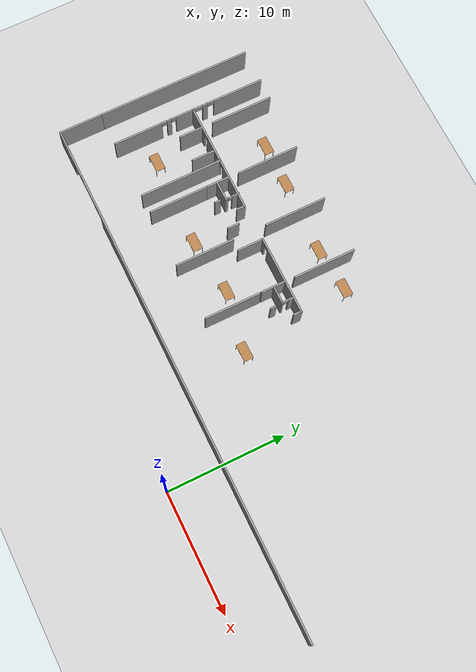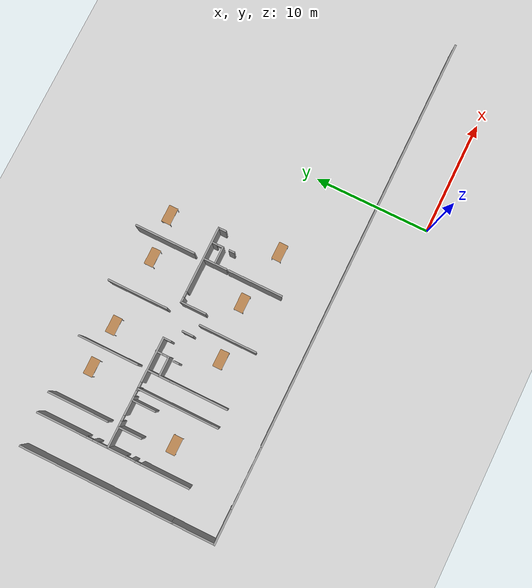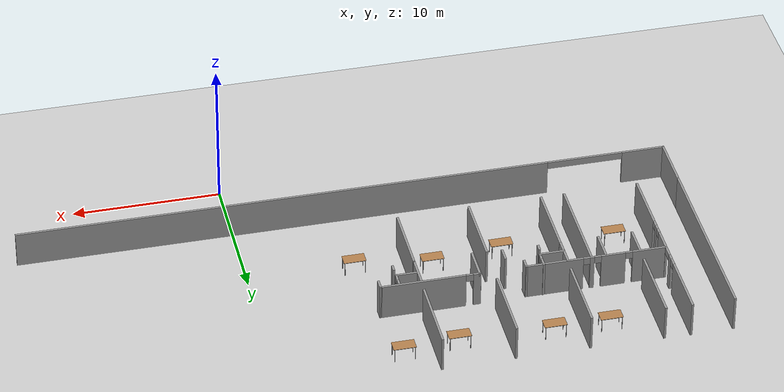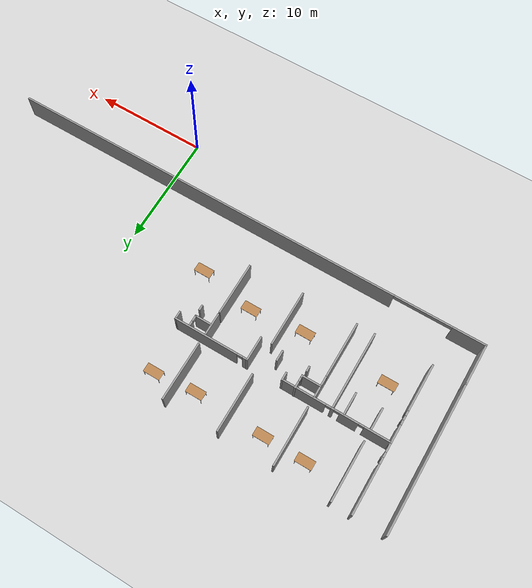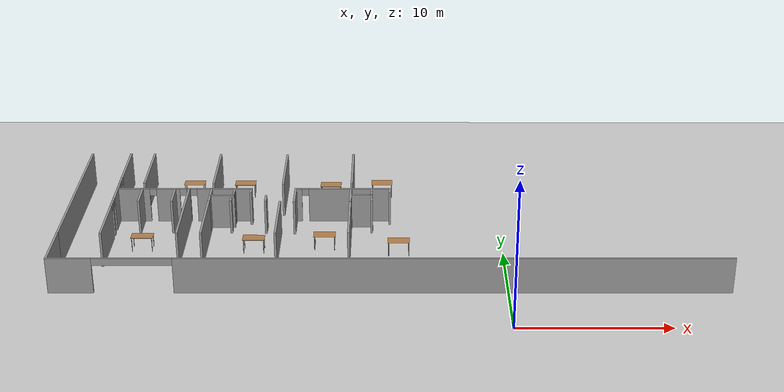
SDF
<sdf version="1.6">
 <world name="default">
  <model name="ground_plane">
   <static>1</static>
   <link name="link">
    <collision name="collision">
     <geometry><plane><normal>0 0 1</normal><size>100 100</size></plane></geometry>
     <surface><friction><ode><mu>100</mu><mu2>50</mu2></ode></friction></surface>
    </collision>
    <visual name="visual">
     <cast_shadows>0</cast_shadows>
     <geometry><plane><normal>0 0 1</normal><size>100 100</size></plane></geometry>
     <material>
      <script><uri>file://media/materials/scripts/gazebo.material</uri><name>Gazebo/Grey</name></script>
     </material>
    </visual>
   </link>
  </model>
  <model name="se1f1_fin.sdf">
   <pose>1.23175 -2.73358 0 0 -0 0</pose>
   <link name="Wall_101">
    <collision name="Wall_101_Collision">
     <geometry><box><size>4.75 0.15 2.5</size></box></geometry>
     <pose>0 0 1.25 0 -0 0</pose>
    </collision>
    <visual name="Wall_101_Visual">
     <pose>0 0 1.25 0 -0 0</pose>
     <geometry><box><size>4.75 0.15 2.5</size></box></geometry>
     <material>
      <script><uri>file://media/materials/scripts/gazebo.material</uri><name>Gazebo/Grey</name></script>
      <ambient>1 1 1 1</ambient>
     </material>
     <meta><layer>0</layer></meta>
    </visual>
    <pose>-11.6538 13.3735 0 0 -0 1.5708</pose>
   </link>
   <link name="Wall_114">
    <collision name="Wall_114_Collision">
     <geometry><box><size>5.25 0.15 2.5</size></box></geometry>
     <pose>0 0 1.25 0 -0 0</pose>
    </collision>
    <visual name="Wall_114_Visual">
     <pose>0 0 1.25 0 -0 0</pose>
     <geometry><box><size>5.25 0.15 2.5</size></box></geometry>
     <material>
      <script><uri>file://media/materials/scripts/gazebo.material</uri><name>Gazebo/Grey</name></script>
      <ambient>1 1 1 1</ambient>
     </material>
     <meta><layer>0</layer></meta>
    </visual>
    <pose>-26.3188 21.4343 0 0 -0 1.5708</pose>
   </link>
   <link name="Wall_116">
    <collision name="Wall_116_Collision">
     <geometry><box><size>5.25 0.15 2.5</size></box></geometry>
     <pose>0 0 1.25 0 -0 0</pose>
    </collision>
    <visual name="Wall_116_Visual">
     <pose>0 0 1.25 0 -0 0</pose>
     <geometry><box><size>5.25 0.15 2.5</size></box></geometry>
     <material>
      <script><uri>file://media/materials/scripts/gazebo.material</uri><name>Gazebo/Grey</name></script>
      <ambient>1 1 1 1</ambient>
     </material>
     <meta><layer>0</layer></meta>
    </visual>
    <pose>-21.4111 21.3539 0 0 -0 1.5708</pose>
   </link>
   <link name="Wall_118">
    <collision name="Wall_118_Collision">
     <geometry><box><size>5.25 0.15 2.5</size></box></geometry>
     <pose>0 0 1.25 0 -0 0</pose>
    </collision>
    <visual name="Wall_118_Visual">
     <pose>0 0 1.25 0 -0 0</pose>
     <geometry><box><size>5.25 0.15 2.5</size></box></geometry>
     <material>
      <script><uri>file://media/materials/scripts/gazebo.material</uri><name>Gazebo/Grey</name></script>
      <ambient>1 1 1 1</ambient>
     </material>
     <meta><layer>0</layer></meta>
    </visual>
    <pose>-16.4833 21.3136 0 0 -0 1.5708</pose>
   </link>
   <link name="Wall_120">
    <collision name="Wall_120_Collision">
     <geometry><box><size>5.25 0.15 2.5</size></box></geometry>
     <pose>0 0 1.25 0 -0 0</pose>
    </collision>
    <visual name="Wall_120_Visual">
     <pose>0 0 1.25 0 -0 0</pose>
     <geometry><box><size>5.25 0.15 2.5</size></box></geometry>
     <material>
      <script><uri>file://media/materials/scripts/gazebo.material</uri><name>Gazebo/Grey</name></script>
      <ambient>1 1 1 1</ambient>
     </material>
     <meta><layer>0</layer></meta>
    </visual>
    <pose>-11.6158 21.3539 0 0 -0 1.5708</pose>
   </link>
   <link name="Wall_14">
    <pose>-28.0766 17.4825 0 0 0 -1.5708</pose>
    <visual name="Wall_14_Visual_0">
     <pose>-4.45706 0 1.25 0 -0 0</pose>
     <geometry><box><size>4.33589 0.15 2.5</size></box></geometry>
     <material>
      <script><uri>file://media/materials/scripts/gazebo.material</uri><name>Gazebo/Grey</name></script>
      <ambient>1 1 1 1</ambient>
     </material>
     <meta><layer>0</layer></meta>
    </visual>
    <collision name="Wall_14_Collision_0">
     <geometry><box><size>4.33589 0.15 2.5</size></box></geometry>
     <pose>-4.45706 0 1.25 0 -0 0</pose>
    </collision>
    <visual name="Wall_14_Visual_1">
     <pose>-1.50054 0 1.25 0 -0 0</pose>
     <geometry><box><size>0.450123 0.15 2.5</size></box></geometry>
     <material>
      <script><uri>file://media/materials/scripts/gazebo.material</uri><name>Gazebo/Grey</name></script>
      <ambient>1 1 1 1</ambient>
     </material>
     <meta><layer>0</layer></meta>
    </visual>
    <collision name="Wall_14_Collision_1">
     <geometry><box><size>0.450123 0.15 2.5</size></box></geometry>
     <pose>-1.50054 0 1.25 0 -0 0</pose>
    </collision>
    <visual name="Wall_14_Visual_2">
     <pose>0.315177 0 1.25 0 -0 0</pose>
     <geometry><box><size>1.64581 0.15 2.5</size></box></geometry>
     <material>
      <script><uri>file://media/materials/scripts/gazebo.material</uri><name>Gazebo/Grey</name></script>
      <ambient>1 1 1 1</ambient>
     </material>
     <meta><layer>0</layer></meta>
    </visual>
    <collision name="Wall_14_Collision_2">
     <geometry><box><size>1.64581 0.15 2.5</size></box></geometry>
     <pose>0.315177 0 1.25 0 -0 0</pose>
    </collision>
    <visual name="Wall_14_Visual_3">
     <pose>1.7534 0 1.25 0 -0 0</pose>
     <geometry><box><size>0.382825 0.15 2.5</size></box></geometry>
     <material>
      <script><uri>file://media/materials/scripts/gazebo.material</uri><name>Gazebo/Grey</name></script>
      <ambient>1 1 1 1</ambient>
     </material>
     <meta><layer>0</layer></meta>
    </visual>
    <collision name="Wall_14_Collision_3">
     <geometry><box><size>0.382825 0.15 2.5</size></box></geometry>
     <pose>1.7534 0 1.25 0 -0 0</pose>
    </collision>
    <visual name="Wall_14_Visual_4">
     <pose>4.51008 0 1.25 0 -0 0</pose>
     <geometry><box><size>4.22984 0.15 2.5</size></box></geometry>
     <material>
      <script><uri>file://media/materials/scripts/gazebo.material</uri><name>Gazebo/Grey</name></script>
      <ambient>1 1 1 1</ambient>
     </material>
     <meta><layer>0</layer></meta>
    </visual>
    <collision name="Wall_14_Collision_4">
     <geometry><box><size>4.22984 0.15 2.5</size></box></geometry>
     <pose>4.51008 0 1.25 0 -0 0</pose>
    </collision>
    <visual name="Wall_14_Visual_5">
     <pose>-2.00736 0 2.25 0 -0 0</pose>
     <geometry><box><size>0.563507 0.15 0.5</size></box></geometry>
     <material>
      <script><uri>file://media/materials/scripts/gazebo.material</uri><name>Gazebo/Grey</name></script>
      <ambient>1 1 1 1</ambient>
     </material>
     <meta><layer>0</layer></meta>
    </visual>
    <collision name="Wall_14_Collision_5">
     <geometry><box><size>0.563507 0.15 0.5</size></box></geometry>
     <pose>-2.00736 0 2.25 0 -0 0</pose>
    </collision>
    <visual name="Wall_14_Visual_6">
     <pose>-0.891604 0 2.25 0 -0 0</pose>
     <geometry><box><size>0.76775 0.15 0.5</size></box></geometry>
     <material>
      <script><uri>file://media/materials/scripts/gazebo.material</uri><name>Gazebo/Grey</name></script>
      <ambient>1 1 1 1</ambient>
     </material>
     <meta><layer>0</layer></meta>
    </visual>
    <collision name="Wall_14_Collision_6">
     <geometry><box><size>0.76775 0.15 0.5</size></box></geometry>
     <pose>-0.891604 0 2.25 0 -0 0</pose>
    </collision>
    <visual name="Wall_14_Visual_7">
     <pose>1.35003 0 2.25 0 -0 0</pose>
     <geometry><box><size>0.4239 0.15 0.5</size></box></geometry>
     <material>
      <script><uri>file://media/materials/scripts/gazebo.material</uri><name>Gazebo/Grey</name></script>
      <ambient>1 1 1 1</ambient>
     </material>
     <meta><layer>0</layer></meta>
    </visual>
    <collision name="Wall_14_Collision_7">
     <geometry><box><size>0.4239 0.15 0.5</size></box></geometry>
     <pose>1.35003 0 2.25 0 -0 0</pose>
    </collision>
    <visual name="Wall_14_Visual_8">
     <pose>2.16998 0 2.25 0 -0 0</pose>
     <geometry><box><size>0.45035 0.15 0.5</size></box></geometry>
     <material>
      <script><uri>file://media/materials/scripts/gazebo.material</uri><name>Gazebo/Grey</name></script>
      <ambient>1 1 1 1</ambient>
     </material>
     <meta><layer>0</layer></meta>
    </visual>
    <collision name="Wall_14_Collision_8">
     <geometry><box><size>0.45035 0.15 0.5</size></box></geometry>
     <pose>2.16998 0 2.25 0 -0 0</pose>
    </collision>
   </link>
   <link name="Wall_18">
    <pose>-23.335 17.9007 0 0 -0 0</pose>
    <visual name="Wall_18_Visual_0">
     <pose>-3.61191 0 1.25 0 -0 0</pose>
     <geometry><box><size>2.27619 0.15 2.5</size></box></geometry>
     <material>
      <script><uri>file://media/materials/scripts/gazebo.material</uri><name>Gazebo/Grey</name></script>
      <ambient>1 1 1 1</ambient>
     </material>
     <meta><layer>0</layer></meta>
    </visual>
    <collision name="Wall_18_Collision_0">
     <geometry><box><size>2.27619 0.15 2.5</size></box></geometry>
     <pose>-3.61191 0 1.25 0 -0 0</pose>
    </collision>
    <visual name="Wall_18_Visual_1">
     <pose>-1.17693 0 1.25 0 -0 0</pose>
     <geometry><box><size>1.64064 0.15 2.5</size></box></geometry>
     <material>
      <script><uri>file://media/materials/scripts/gazebo.material</uri><name>Gazebo/Grey</name></script>
      <ambient>1 1 1 1</ambient>
     </material>
     <meta><layer>0</layer></meta>
    </visual>
    <collision name="Wall_18_Collision_1">
     <geometry><box><size>1.64064 0.15 2.5</size></box></geometry>
     <pose>-1.17693 0 1.25 0 -0 0</pose>
    </collision>
    <visual name="Wall_18_Visual_2">
     <pose>0.25407 0 1.25 0 -0 0</pose>
     <geometry><box><size>0.283366 0.15 2.5</size></box></geometry>
     <material>
      <script><uri>file://media/materials/scripts/gazebo.material</uri><name>Gazebo/Grey</name></script>
      <ambient>1 1 1 1</ambient>
     </material>
     <meta><layer>0</layer></meta>
    </visual>
    <collision name="Wall_18_Collision_2">
     <geometry><box><size>0.283366 0.15 2.5</size></box></geometry>
     <pose>0.25407 0 1.25 0 -0 0</pose>
    </collision>
    <visual name="Wall_18_Visual_3">
     <pose>2.79981 0 1.25 0 -0 0</pose>
     <geometry><box><size>3.90037 0.15 2.5</size></box></geometry>
     <material>
      <script><uri>file://media/materials/scripts/gazebo.material</uri><name>Gazebo/Grey</name></script>
      <ambient>1 1 1 1</ambient>
     </material>
     <meta><layer>0</layer></meta>
    </visual>
    <collision name="Wall_18_Collision_3">
     <geometry><box><size>3.90037 0.15 2.5</size></box></geometry>
     <pose>2.79981 0 1.25 0 -0 0</pose>
    </collision>
    <visual name="Wall_18_Visual_4">
     <pose>-2.23553 0 2.25 0 -0 0</pose>
     <geometry><box><size>0.47656 0.15 0.5</size></box></geometry>
     <material>
      <script><uri>file://media/materials/scripts/gazebo.material</uri><name>Gazebo/Grey</name></script>
      <ambient>1 1 1 1</ambient>
     </material>
     <meta><layer>0</layer></meta>
    </visual>
    <collision name="Wall_18_Collision_4">
     <geometry><box><size>0.47656 0.15 0.5</size></box></geometry>
     <pose>-2.23553 0 2.25 0 -0 0</pose>
    </collision>
    <visual name="Wall_18_Visual_5">
     <pose>-0.122112 0 2.25 0 -0 0</pose>
     <geometry><box><size>0.468998 0.15 0.5</size></box></geometry>
     <material>
      <script><uri>file://media/materials/scripts/gazebo.material</uri><name>Gazebo/Grey</name></script>
      <ambient>1 1 1 1</ambient>
     </material>
     <meta><layer>0</layer></meta>
    </visual>
    <collision name="Wall_18_Collision_5">
     <geometry><box><size>0.468998 0.15 0.5</size></box></geometry>
     <pose>-0.122112 0 2.25 0 -0 0</pose>
    </collision>
    <visual name="Wall_18_Visual_6">
     <pose>0.62269 0 2.25 0 -0 0</pose>
     <geometry><box><size>0.453875 0.15 0.5</size></box></geometry>
     <material>
      <script><uri>file://media/materials/scripts/gazebo.material</uri><name>Gazebo/Grey</name></script>
      <ambient>1 1 1 1</ambient>
     </material>
     <meta><layer>0</layer></meta>
    </visual>
    <collision name="Wall_18_Collision_6">
     <geometry><box><size>0.453875 0.15 0.5</size></box></geometry>
     <pose>0.62269 0 2.25 0 -0 0</pose>
    </collision>
   </link>
   <link name="Wall_19">
    <collision name="Wall_19_Collision">
     <geometry><box><size>0.75 0.15 2.5</size></box></geometry>
     <pose>0 0 1.25 0 -0 0</pose>
    </collision>
    <visual name="Wall_19_Visual">
     <pose>0 0 1.25 0 -0 0</pose>
     <geometry><box><size>0.75 0.15 2.5</size></box></geometry>
     <material>
      <script><uri>file://media/materials/scripts/gazebo.material</uri><name>Gazebo/Grey</name></script>
      <ambient>1 1 1 1</ambient>
     </material>
     <meta><layer>0</layer></meta>
    </visual>
    <pose>-18.66 17.6007 0 0 0 -1.5708</pose>
   </link>
   <link name="Wall_2">
    <collision name="Wall_2_Collision">
     <geometry><box><size>13.25 0.15 2.5</size></box></geometry>
     <pose>0 0 1.25 0 -0 0</pose>
    </collision>
    <visual name="Wall_2_Visual">
     <pose>0 0 1.25 0 -0 0</pose>
     <geometry><box><size>13.25 0.15 2.5</size></box></geometry>
     <material>
      <script><uri>file://media/materials/scripts/gazebo.material</uri><name>Gazebo/Grey</name></script>
      <ambient>1 1 1 1</ambient>
     </material>
     <meta><layer>0</layer></meta>
    </visual>
    <pose>-30.925 17.4675 0 0 0 -1.5708</pose>
   </link>
   <link name="Wall_23">
    <collision name="Wall_23_Collision">
     <geometry><box><size>2.25 0.15 2.5</size></box></geometry>
     <pose>0 0 1.25 0 -0 0</pose>
    </collision>
    <visual name="Wall_23_Visual">
     <pose>0 0 1.25 0 -0 0</pose>
     <geometry><box><size>2.25 0.15 2.5</size></box></geometry>
     <material>
      <script><uri>file://media/materials/scripts/gazebo.material</uri><name>Gazebo/Grey</name></script>
      <ambient>1 1 1 1</ambient>
     </material>
     <meta><layer>0</layer></meta>
    </visual>
    <pose>-15.5339 16.883 0 0 -0 1.5708</pose>
   </link>
   <link name="Wall_24">
    <pose>-12.2339 17.933 0 0 -0 0</pose>
    <visual name="Wall_24_Visual_0">
     <pose>-3.12149 0 1.25 0 -0 0</pose>
     <geometry><box><size>0.507011 0.15 2.5</size></box></geometry>
     <material>
      <script><uri>file://media/materials/scripts/gazebo.material</uri><name>Gazebo/Grey</name></script>
      <ambient>1 1 1 1</ambient>
     </material>
     <meta><layer>0</layer></meta>
    </visual>
    <collision name="Wall_24_Collision_0">
     <geometry><box><size>0.507011 0.15 2.5</size></box></geometry>
     <pose>-3.12149 0 1.25 0 -0 0</pose>
    </collision>
    <visual name="Wall_24_Visual_1">
     <pose>0.495566 0 1.25 0 -0 0</pose>
     <geometry><box><size>5.75887 0.15 2.5</size></box></geometry>
     <material>
      <script><uri>file://media/materials/scripts/gazebo.material</uri><name>Gazebo/Grey</name></script>
      <ambient>1 1 1 1</ambient>
     </material>
     <meta><layer>0</layer></meta>
    </visual>
    <collision name="Wall_24_Collision_1">
     <geometry><box><size>5.75887 0.15 2.5</size></box></geometry>
     <pose>0.495566 0 1.25 0 -0 0</pose>
    </collision>
    <visual name="Wall_24_Visual_2">
     <pose>-2.62593 0 2.25 0 -0 0</pose>
     <geometry><box><size>0.484121 0.15 0.5</size></box></geometry>
     <material>
      <script><uri>file://media/materials/scripts/gazebo.material</uri><name>Gazebo/Grey</name></script>
      <ambient>1 1 1 1</ambient>
     </material>
     <meta><layer>0</layer></meta>
    </visual>
    <collision name="Wall_24_Collision_2">
     <geometry><box><size>0.484121 0.15 0.5</size></box></geometry>
     <pose>-2.62593 0 2.25 0 -0 0</pose>
    </collision>
   </link>
   <link name="Wall_25">
    <collision name="Wall_25_Collision">
     <geometry><box><size>0.75 0.15 2.5</size></box></geometry>
     <pose>0 0 1.25 0 -0 0</pose>
    </collision>
    <visual name="Wall_25_Visual">
     <pose>0 0 1.25 0 -0 0</pose>
     <geometry><box><size>0.75 0.15 2.5</size></box></geometry>
     <material>
      <script><uri>file://media/materials/scripts/gazebo.material</uri><name>Gazebo/Grey</name></script>
      <ambient>1 1 1 1</ambient>
     </material>
     <meta><layer>0</layer></meta>
    </visual>
    <pose>-8.93387 17.633 0 0 0 -1.5708</pose>
   </link>
   <link name="Wall_50">
    <collision name="Wall_50_Collision">
     <geometry><box><size>2 0.15 2.5</size></box></geometry>
     <pose>0 0 1.25 0 -0 0</pose>
    </collision>
    <visual name="Wall_50_Visual">
     <pose>0 0 1.25 0 -0 0</pose>
     <geometry><box><size>2 0.15 2.5</size></box></geometry>
     <material>
      <script><uri>file://media/materials/scripts/gazebo.material</uri><name>Gazebo/Grey</name></script>
      <ambient>1 1 1 1</ambient>
     </material>
     <meta><layer>0</layer></meta>
    </visual>
    <pose>-11.6546 16.8614 0 0 0 -1.5708</pose>
   </link>
   <link name="Wall_52">
    <pose>-10.1946 17.3614 0 0 0 -1.5708</pose>
    <visual name="Wall_52_Visual_0">
     <pose>-0.291417 0 1.25 0 -0 0</pose>
     <geometry><box><size>0.417167 0.15 2.5</size></box></geometry>
     <material>
      <script><uri>file://media/materials/scripts/gazebo.material</uri><name>Gazebo/Grey</name></script>
      <ambient>1 1 1 1</ambient>
     </material>
     <meta><layer>0</layer></meta>
    </visual>
    <collision name="Wall_52_Collision_0">
     <geometry><box><size>0.417167 0.15 2.5</size></box></geometry>
     <pose>-0.291417 0 1.25 0 -0 0</pose>
    </collision>
    <visual name="Wall_52_Visual_1">
     <pose>0.443082 0 1.25 0 -0 0</pose>
     <geometry><box><size>0.113835 0.15 2.5</size></box></geometry>
     <material>
      <script><uri>file://media/materials/scripts/gazebo.material</uri><name>Gazebo/Grey</name></script>
      <ambient>1 1 1 1</ambient>
     </material>
     <meta><layer>0</layer></meta>
    </visual>
    <collision name="Wall_52_Collision_1">
     <geometry><box><size>0.113835 0.15 2.5</size></box></geometry>
     <pose>0.443082 0 1.25 0 -0 0</pose>
    </collision>
    <visual name="Wall_52_Visual_2">
     <pose>0.151666 0 2.25 0 -0 0</pose>
     <geometry><box><size>0.468998 0.15 0.5</size></box></geometry>
     <material>
      <script><uri>file://media/materials/scripts/gazebo.material</uri><name>Gazebo/Grey</name></script>
      <ambient>1 1 1 1</ambient>
     </material>
     <meta><layer>0</layer></meta>
    </visual>
    <collision name="Wall_52_Collision_2">
     <geometry><box><size>0.468998 0.15 0.5</size></box></geometry>
     <pose>0.151666 0 2.25 0 -0 0</pose>
    </collision>
   </link>
   <link name="Wall_54">
    <collision name="Wall_54_Collision">
     <geometry><box><size>1.5 0.15 2.5</size></box></geometry>
     <pose>0 0 1.25 0 -0 0</pose>
    </collision>
    <visual name="Wall_54_Visual">
     <pose>0 0 1.25 0 -0 0</pose>
     <geometry><box><size>1.5 0.15 2.5</size></box></geometry>
     <material>
      <script><uri>file://media/materials/scripts/gazebo.material</uri><name>Gazebo/Grey</name></script>
      <ambient>1 1 1 1</ambient>
     </material>
     <meta><layer>0</layer></meta>
    </visual>
    <pose>-10.8696 16.9364 0 0 -0 3.14159</pose>
   </link>
   <link name="Wall_56">
    <collision name="Wall_56_Collision">
     <geometry><box><size>0.5 0.15 2.5</size></box></geometry>
     <pose>0 0 1.25 0 -0 0</pose>
    </collision>
    <visual name="Wall_56_Visual">
     <pose>0 0 1.25 0 -0 0</pose>
     <geometry><box><size>0.5 0.15 2.5</size></box></geometry>
     <material>
      <script><uri>file://media/materials/scripts/gazebo.material</uri><name>Gazebo/Grey</name></script>
      <ambient>1 1 1 1</ambient>
     </material>
     <meta><layer>0</layer></meta>
    </visual>
    <pose>-10.1746 16.1514 0 0 0 -1.5708</pose>
   </link>
   <link name="Wall_7">
    <collision name="Wall_7_Collision">
     <geometry><box><size>3.75 0.15 2.5</size></box></geometry>
     <pose>0 0 1.25 0 -0 0</pose>
    </collision>
    <visual name="Wall_7_Visual">
     <pose>0 0 1.25 0 -0 0</pose>
     <geometry><box><size>3.75 0.15 2.5</size></box></geometry>
     <material>
      <script><uri>file://media/materials/scripts/gazebo.material</uri><name>Gazebo/Grey</name></script>
      <ambient>1 1 1 1</ambient>
     </material>
     <meta><layer>0</layer></meta>
    </visual>
    <pose>-30.925 9.11753 0 0 0 -1.5708</pose>
   </link>
   <link name="Wall_73">
    <collision name="Wall_73_Collision">
     <geometry><box><size>1.75 0.15 2.5</size></box></geometry>
     <pose>0 0 1.25 0 -0 0</pose>
    </collision>
    <visual name="Wall_73_Visual">
     <pose>0 0 1.25 0 -0 0</pose>
     <geometry><box><size>1.75 0.15 2.5</size></box></geometry>
     <material>
      <script><uri>file://media/materials/scripts/gazebo.material</uri><name>Gazebo/Grey</name></script>
      <ambient>1 1 1 1</ambient>
     </material>
     <meta><layer>0</layer></meta>
    </visual>
    <pose>-20.6259 16.8413 0 0 -0 0</pose>
   </link>
   <link name="Wall_74">
    <pose>-19.8259 17.3913 0 0 -0 1.5708</pose>
    <visual name="Wall_74_Visual_0">
     <pose>-0.503529 0 1.25 0 -0 0</pose>
     <geometry><box><size>0.242941 0.15 2.5</size></box></geometry>
     <material>
      <script><uri>file://media/materials/scripts/gazebo.material</uri><name>Gazebo/Grey</name></script>
      <ambient>1 1 1 1</ambient>
     </material>
     <meta><layer>0</layer></meta>
    </visual>
    <collision name="Wall_74_Collision_0">
     <geometry><box><size>0.242941 0.15 2.5</size></box></geometry>
     <pose>-0.503529 0 1.25 0 -0 0</pose>
    </collision>
    <visual name="Wall_74_Visual_1">
     <pose>0.299259 0 1.25 0 -0 0</pose>
     <geometry><box><size>0.651482 0.15 2.5</size></box></geometry>
     <material>
      <script><uri>file://media/materials/scripts/gazebo.material</uri><name>Gazebo/Grey</name></script>
      <ambient>1 1 1 1</ambient>
     </material>
     <meta><layer>0</layer></meta>
    </visual>
    <collision name="Wall_74_Collision_1">
     <geometry><box><size>0.651482 0.15 2.5</size></box></geometry>
     <pose>0.299259 0 1.25 0 -0 0</pose>
    </collision>
    <visual name="Wall_74_Visual_2">
     <pose>-0.20427 0 2.25 0 -0 0</pose>
     <geometry><box><size>0.355577 0.15 0.5</size></box></geometry>
     <material>
      <script><uri>file://media/materials/scripts/gazebo.material</uri><name>Gazebo/Grey</name></script>
      <ambient>1 1 1 1</ambient>
     </material>
     <meta><layer>0</layer></meta>
    </visual>
    <collision name="Wall_74_Collision_2">
     <geometry><box><size>0.355577 0.15 0.5</size></box></geometry>
     <pose>-0.20427 0 2.25 0 -0 0</pose>
    </collision>
   </link>
   <link name="Wall_76">
    <collision name="Wall_76_Collision">
     <geometry><box><size>0.5 0.15 2.5</size></box></geometry>
     <pose>0 0 1.25 0 -0 0</pose>
    </collision>
    <visual name="Wall_76_Visual">
     <pose>0 0 1.25 0 -0 0</pose>
     <geometry><box><size>0.5 0.15 2.5</size></box></geometry>
     <material>
      <script><uri>file://media/materials/scripts/gazebo.material</uri><name>Gazebo/Grey</name></script>
      <ambient>1 1 1 1</ambient>
     </material>
     <meta><layer>0</layer></meta>
    </visual>
    <pose>-19.9459 16.1463 0 0 0 -1.5708</pose>
   </link>
   <link name="Wall_78">
    <collision name="Wall_78_Collision">
     <geometry><box><size>1 0.15 2.5</size></box></geometry>
     <pose>0 0 1.25 0 -0 0</pose>
    </collision>
    <visual name="Wall_78_Visual">
     <pose>0 0 1.25 0 -0 0</pose>
     <geometry><box><size>1 0.15 2.5</size></box></geometry>
     <material>
      <script><uri>file://media/materials/scripts/gazebo.material</uri><name>Gazebo/Grey</name></script>
      <ambient>1 1 1 1</ambient>
     </material>
     <meta><layer>0</layer></meta>
    </visual>
    <pose>-17.5359 16.3563 0 0 0 -1.5708</pose>
   </link>
   <link name="Wall_8">
    <pose>-8.875 7.31753 0 0 -0 0</pose>
    <visual name="Wall_8_Visual_0">
     <pose>-20.6414 0 1.25 0 -0 0</pose>
     <geometry><box><size>2.96714 0.15 2.5</size></box></geometry>
     <material>
      <script><uri>file://media/materials/scripts/gazebo.material</uri><name>Gazebo/Grey</name></script>
      <ambient>1 1 1 1</ambient>
     </material>
     <meta><layer>0</layer></meta>
    </visual>
    <collision name="Wall_8_Collision_0">
     <geometry><box><size>2.96714 0.15 2.5</size></box></geometry>
     <pose>-20.6414 0 1.25 0 -0 0</pose>
    </collision>
    <visual name="Wall_8_Visual_1">
     <pose>4.07367 0 1.25 0 -0 0</pose>
     <geometry><box><size>36.1027 0.15 2.5</size></box></geometry>
     <material>
      <script><uri>file://media/materials/scripts/gazebo.material</uri><name>Gazebo/Grey</name></script>
      <ambient>1 1 1 1</ambient>
     </material>
     <meta><layer>0</layer></meta>
    </visual>
    <collision name="Wall_8_Collision_1">
     <geometry><box><size>36.1027 0.15 2.5</size></box></geometry>
     <pose>4.07367 0 1.25 0 -0 0</pose>
    </collision>
    <visual name="Wall_8_Visual_2">
     <pose>-16.5678 0 2.25 0 -0 0</pose>
     <geometry><box><size>5.1802 0.15 0.5</size></box></geometry>
     <material>
      <script><uri>file://media/materials/scripts/gazebo.material</uri><name>Gazebo/Grey</name></script>
      <ambient>1 1 1 1</ambient>
     </material>
     <meta><layer>0</layer></meta>
    </visual>
    <collision name="Wall_8_Collision_2">
     <geometry><box><size>5.1802 0.15 0.5</size></box></geometry>
     <pose>-16.5678 0 2.25 0 -0 0</pose>
    </collision>
   </link>
   <link name="Wall_80">
    <collision name="Wall_80_Collision">
     <geometry><box><size>2 0.15 2.5</size></box></geometry>
     <pose>0 0 1.25 0 -0 0</pose>
    </collision>
    <visual name="Wall_80_Visual">
     <pose>0 0 1.25 0 -0 0</pose>
     <geometry><box><size>2 0.15 2.5</size></box></geometry>
     <material>
      <script><uri>file://media/materials/scripts/gazebo.material</uri><name>Gazebo/Grey</name></script>
      <ambient>1 1 1 1</ambient>
     </material>
     <meta><layer>0</layer></meta>
    </visual>
    <pose>-26.3259 16.8863 0 0 0 -1.5708</pose>
   </link>
   <link name="Wall_82">
    <collision name="Wall_82_Collision">
     <geometry><box><size>2 0.15 2.5</size></box></geometry>
     <pose>0 0 1.25 0 -0 0</pose>
    </collision>
    <visual name="Wall_82_Visual">
     <pose>0 0 1.25 0 -0 0</pose>
     <geometry><box><size>2 0.15 2.5</size></box></geometry>
     <material>
      <script><uri>file://media/materials/scripts/gazebo.material</uri><name>Gazebo/Grey</name></script>
      <ambient>1 1 1 1</ambient>
     </material>
     <meta><layer>0</layer></meta>
    </visual>
    <pose>-24.0259 16.8763 0 0 0 -1.5708</pose>
   </link>
   <link name="Wall_88">
    <collision name="Wall_88_Collision">
     <geometry><box><size>2 0.15 2.5</size></box></geometry>
     <pose>0 0 1.25 0 -0 0</pose>
    </collision>
    <visual name="Wall_88_Visual">
     <pose>0 0 1.25 0 -0 0</pose>
     <geometry><box><size>2 0.15 2.5</size></box></geometry>
     <material>
      <script><uri>file://media/materials/scripts/gazebo.material</uri><name>Gazebo/Grey</name></script>
      <ambient>1 1 1 1</ambient>
     </material>
     <meta><layer>0</layer></meta>
    </visual>
    <pose>-21.4511 16.9013 0 0 0 -1.5708</pose>
   </link>
   <link name="Wall_95">
    <collision name="Wall_95_Collision">
     <geometry><box><size>5 0.15 2.5</size></box></geometry>
     <pose>0 0 1.25 0 -0 0</pose>
    </collision>
    <visual name="Wall_95_Visual">
     <pose>0 0 1.25 0 -0 0</pose>
     <geometry><box><size>5 0.15 2.5</size></box></geometry>
     <material>
      <script><uri>file://media/materials/scripts/gazebo.material</uri><name>Gazebo/Grey</name></script>
      <ambient>1 1 1 1</ambient>
     </material>
     <meta><layer>0</layer></meta>
    </visual>
    <pose>-21.4482 13.4285 0 0 -0 1.5708</pose>
   </link>
   <link name="Wall_97">
    <collision name="Wall_97_Collision">
     <geometry><box><size>7 0.15 2.5</size></box></geometry>
     <pose>0 0 1.25 0 -0 0</pose>
    </collision>
    <visual name="Wall_97_Visual">
     <pose>0 0 1.25 0 -0 0</pose>
     <geometry><box><size>7 0.15 2.5</size></box></geometry>
     <material>
      <script><uri>file://media/materials/scripts/gazebo.material</uri><name>Gazebo/Grey</name></script>
      <ambient>1 1 1 1</ambient>
     </material>
     <meta><layer>0</layer></meta>
    </visual>
    <pose>-23.0398 14.4171 0 0 0 -1.5708</pose>
   </link>
   <link name="Wall_99">
    <collision name="Wall_99_Collision">
     <geometry><box><size>5 0.15 2.5</size></box></geometry>
     <pose>0 0 1.25 0 -0 0</pose>
    </collision>
    <visual name="Wall_99_Visual">
     <pose>0 0 1.25 0 -0 0</pose>
     <geometry><box><size>5 0.15 2.5</size></box></geometry>
     <material>
      <script><uri>file://media/materials/scripts/gazebo.material</uri><name>Gazebo/Grey</name></script>
      <ambient>1 1 1 1</ambient>
     </material>
     <meta><layer>0</layer></meta>
    </visual>
    <pose>-16.516 13.3708 0 0 0 -1.5708</pose>
   </link>
   <static>1</static>
  </model>
  <model name="table">
   <static>1</static>
   <link name="link">
    <collision name="surface">
     <pose>0 0 1 0 -0 0</pose>
     <geometry><box><size>1.5 0.8 0.03</size></box></geometry>
     <surface><friction><ode><mu>0.6</mu><mu2>0.6</mu2></ode></friction></surface>
    </collision>
    <visual name="visual1">
     <pose>0 0 1 0 -0 0</pose>
     <geometry><box><size>1.5 0.8 0.03</size></box></geometry>
     <material>
      <script><uri>file://media/materials/scripts/gazebo.material</uri><name>Gazebo/Wood</name></script>
     </material>
    </visual>
    <collision name="front_left_leg">
     <pose>0.68 0.38 0.5 0 -0 0</pose>
     <geometry><cylinder><radius>0.02</radius><length>1</length></cylinder></geometry>
    </collision>
    <visual name="front_left_leg">
     <pose>0.68 0.38 0.5 0 -0 0</pose>
     <geometry><cylinder><radius>0.02</radius><length>1</length></cylinder></geometry>
     <material>
      <script><uri>file://media/materials/scripts/gazebo.material</uri><name>Gazebo/Grey</name></script>
     </material>
    </visual>
    <collision name="front_right_leg">
     <pose>0.68 -0.38 0.5 0 -0 0</pose>
     <geometry><cylinder><radius>0.02</radius><length>1</length></cylinder></geometry>
    </collision>
    <visual name="front_right_leg">
     <pose>0.68 -0.38 0.5 0 -0 0</pose>
     <geometry><cylinder><radius>0.02</radius><length>1</length></cylinder></geometry>
     <material>
      <script><uri>file://media/materials/scripts/gazebo.material</uri><name>Gazebo/Grey</name></script>
     </material>
    </visual>
    <collision name="back_right_leg">
     <pose>-0.68 -0.38 0.5 0 -0 0</pose>
     <geometry><cylinder><radius>0.02</radius><length>1</length></cylinder></geometry>
    </collision>
    <visual name="back_right_leg">
     <pose>-0.68 -0.38 0.5 0 -0 0</pose>
     <geometry><cylinder><radius>0.02</radius><length>1</length></cylinder></geometry>
     <material>
      <script><uri>file://media/materials/scripts/gazebo.material</uri><name>Gazebo/Grey</name></script>
     </material>
    </visual>
    <collision name="back_left_leg">
     <pose>-0.68 0.38 0.5 0 -0 0</pose>
     <geometry><cylinder><radius>0.02</radius><length>1</length></cylinder></geometry>
    </collision>
    <visual name="back_left_leg">
     <pose>-0.68 0.38 0.5 0 -0 0</pose>
     <geometry><cylinder><radius>0.02</radius><length>1</length></cylinder></geometry>
     <material>
      <script><uri>file://media/materials/scripts/gazebo.material</uri><name>Gazebo/Grey</name></script>
     </material>
    </visual>
   </link>
   <pose>-24.545 10.7688 0 0 -0 0</pose>
  </model>
  <model name="table_0">
   <static>1</static>
   <link name="link">
    <collision name="surface">
     <pose>0 0 1 0 -0 0</pose>
     <geometry><box><size>1.5 0.8 0.03</size></box></geometry>
     <surface><friction><ode><mu>0.6</mu><mu2>0.6</mu2></ode></friction></surface>
    </collision>
    <visual name="visual1">
     <pose>0 0 1 0 -0 0</pose>
     <geometry><box><size>1.5 0.8 0.03</size></box></geometry>
     <material>
      <script><uri>file://media/materials/scripts/gazebo.material</uri><name>Gazebo/Wood</name></script>
     </material>
    </visual>
    <collision name="front_left_leg">
     <pose>0.68 0.38 0.5 0 -0 0</pose>
     <geometry><cylinder><radius>0.02</radius><length>1</length></cylinder></geometry>
    </collision>
    <visual name="front_left_leg">
     <pose>0.68 0.38 0.5 0 -0 0</pose>
     <geometry><cylinder><radius>0.02</radius><length>1</length></cylinder></geometry>
     <material>
      <script><uri>file://media/materials/scripts/gazebo.material</uri><name>Gazebo/Grey</name></script>
     </material>
    </visual>
    <collision name="front_right_leg">
     <pose>0.68 -0.38 0.5 0 -0 0</pose>
     <geometry><cylinder><radius>0.02</radius><length>1</length></cylinder></geometry>
    </collision>
    <visual name="front_right_leg">
     <pose>0.68 -0.38 0.5 0 -0 0</pose>
     <geometry><cylinder><radius>0.02</radius><length>1</length></cylinder></geometry>
     <material>
      <script><uri>file://media/materials/scripts/gazebo.material</uri><name>Gazebo/Grey</name></script>
     </material>
    </visual>
    <collision name="back_right_leg">
     <pose>-0.68 -0.38 0.5 0 -0 0</pose>
     <geometry><cylinder><radius>0.02</radius><length>1</length></cylinder></geometry>
    </collision>
    <visual name="back_right_leg">
     <pose>-0.68 -0.38 0.5 0 -0 0</pose>
     <geometry><cylinder><radius>0.02</radius><length>1</length></cylinder></geometry>
     <material>
      <script><uri>file://media/materials/scripts/gazebo.material</uri><name>Gazebo/Grey</name></script>
     </material>
    </visual>
    <collision name="back_left_leg">
     <pose>-0.68 0.38 0.5 0 -0 0</pose>
     <geometry><cylinder><radius>0.02</radius><length>1</length></cylinder></geometry>
    </collision>
    <visual name="back_left_leg">
     <pose>-0.68 0.38 0.5 0 -0 0</pose>
     <geometry><cylinder><radius>0.02</radius><length>1</length></cylinder></geometry>
     <material>
      <script><uri>file://media/materials/scripts/gazebo.material</uri><name>Gazebo/Grey</name></script>
     </material>
    </visual>
   </link>
   <pose>-16.9289 10.4761 0 0 -0 0</pose>
  </model>
  <model name="table_1">
   <static>1</static>
   <link name="link">
    <collision name="surface">
     <pose>0 0 1 0 -0 0</pose>
     <geometry><box><size>1.5 0.8 0.03</size></box></geometry>
     <surface><friction><ode><mu>0.6</mu><mu2>0.6</mu2></ode></friction></surface>
    </collision>
    <visual name="visual1">
     <pose>0 0 1 0 -0 0</pose>
     <geometry><box><size>1.5 0.8 0.03</size></box></geometry>
     <material>
      <script><uri>file://media/materials/scripts/gazebo.material</uri><name>Gazebo/Wood</name></script>
     </material>
    </visual>
    <collision name="front_left_leg">
     <pose>0.68 0.38 0.5 0 -0 0</pose>
     <geometry><cylinder><radius>0.02</radius><length>1</length></cylinder></geometry>
    </collision>
    <visual name="front_left_leg">
     <pose>0.68 0.38 0.5 0 -0 0</pose>
     <geometry><cylinder><radius>0.02</radius><length>1</length></cylinder></geometry>
     <material>
      <script><uri>file://media/materials/scripts/gazebo.material</uri><name>Gazebo/Grey</name></script>
     </material>
    </visual>
    <collision name="front_right_leg">
     <pose>0.68 -0.38 0.5 0 -0 0</pose>
     <geometry><cylinder><radius>0.02</radius><length>1</length></cylinder></geometry>
    </collision>
    <visual name="front_right_leg">
     <pose>0.68 -0.38 0.5 0 -0 0</pose>
     <geometry><cylinder><radius>0.02</radius><length>1</length></cylinder></geometry>
     <material>
      <script><uri>file://media/materials/scripts/gazebo.material</uri><name>Gazebo/Grey</name></script>
     </material>
    </visual>
    <collision name="back_right_leg">
     <pose>-0.68 -0.38 0.5 0 -0 0</pose>
     <geometry><cylinder><radius>0.02</radius><length>1</length></cylinder></geometry>
    </collision>
    <visual name="back_right_leg">
     <pose>-0.68 -0.38 0.5 0 -0 0</pose>
     <geometry><cylinder><radius>0.02</radius><length>1</length></cylinder></geometry>
     <material>
      <script><uri>file://media/materials/scripts/gazebo.material</uri><name>Gazebo/Grey</name></script>
     </material>
    </visual>
    <collision name="back_left_leg">
     <pose>-0.68 0.38 0.5 0 -0 0</pose>
     <geometry><cylinder><radius>0.02</radius><length>1</length></cylinder></geometry>
    </collision>
    <visual name="back_left_leg">
     <pose>-0.68 0.38 0.5 0 -0 0</pose>
     <geometry><cylinder><radius>0.02</radius><length>1</length></cylinder></geometry>
     <material>
      <script><uri>file://media/materials/scripts/gazebo.material</uri><name>Gazebo/Grey</name></script>
     </material>
    </visual>
   </link>
   <pose>-12.1299 10.9715 0 0 -0 0</pose>
  </model>
  <model name="table_2">
   <static>1</static>
   <link name="link">
    <collision name="surface">
     <pose>0 0 1 0 -0 0</pose>
     <geometry><box><size>1.5 0.8 0.03</size></box></geometry>
     <surface><friction><ode><mu>0.6</mu><mu2>0.6</mu2></ode></friction></surface>
    </collision>
    <visual name="visual1">
     <pose>0 0 1 0 -0 0</pose>
     <geometry><box><size>1.5 0.8 0.03</size></box></geometry>
     <material>
      <script><uri>file://media/materials/scripts/gazebo.material</uri><name>Gazebo/Wood</name></script>
     </material>
    </visual>
    <collision name="front_left_leg">
     <pose>0.68 0.38 0.5 0 -0 0</pose>
     <geometry><cylinder><radius>0.02</radius><length>1</length></cylinder></geometry>
    </collision>
    <visual name="front_left_leg">
     <pose>0.68 0.38 0.5 0 -0 0</pose>
     <geometry><cylinder><radius>0.02</radius><length>1</length></cylinder></geometry>
     <material>
      <script><uri>file://media/materials/scripts/gazebo.material</uri><name>Gazebo/Grey</name></script>
     </material>
    </visual>
    <collision name="front_right_leg">
     <pose>0.68 -0.38 0.5 0 -0 0</pose>
     <geometry><cylinder><radius>0.02</radius><length>1</length></cylinder></geometry>
    </collision>
    <visual name="front_right_leg">
     <pose>0.68 -0.38 0.5 0 -0 0</pose>
     <geometry><cylinder><radius>0.02</radius><length>1</length></cylinder></geometry>
     <material>
      <script><uri>file://media/materials/scripts/gazebo.material</uri><name>Gazebo/Grey</name></script>
     </material>
    </visual>
    <collision name="back_right_leg">
     <pose>-0.68 -0.38 0.5 0 -0 0</pose>
     <geometry><cylinder><radius>0.02</radius><length>1</length></cylinder></geometry>
    </collision>
    <visual name="back_right_leg">
     <pose>-0.68 -0.38 0.5 0 -0 0</pose>
     <geometry><cylinder><radius>0.02</radius><length>1</length></cylinder></geometry>
     <material>
      <script><uri>file://media/materials/scripts/gazebo.material</uri><name>Gazebo/Grey</name></script>
     </material>
    </visual>
    <collision name="back_left_leg">
     <pose>-0.68 0.38 0.5 0 -0 0</pose>
     <geometry><cylinder><radius>0.02</radius><length>1</length></cylinder></geometry>
    </collision>
    <visual name="back_left_leg">
     <pose>-0.68 0.38 0.5 0 -0 0</pose>
     <geometry><cylinder><radius>0.02</radius><length>1</length></cylinder></geometry>
     <material>
      <script><uri>file://media/materials/scripts/gazebo.material</uri><name>Gazebo/Grey</name></script>
     </material>
    </visual>
   </link>
   <pose>-7.07705 10.0646 0 0 -0 0</pose>
  </model>
  <model name="table_7">
   <static>1</static>
   <link name="link">
    <collision name="surface">
     <pose>0 0 1 0 -0 0</pose>
     <geometry><box><size>1.5 0.8 0.03</size></box></geometry>
     <surface><friction><ode><mu>0.6</mu><mu2>0.6</mu2></ode></friction></surface>
    </collision>
    <visual name="visual1">
     <pose>0 0 1 0 -0 0</pose>
     <geometry><box><size>1.5 0.8 0.03</size></box></geometry>
     <material>
      <script><uri>file://media/materials/scripts/gazebo.material</uri><name>Gazebo/Wood</name></script>
     </material>
    </visual>
    <collision name="front_left_leg">
     <pose>0.68 0.38 0.5 0 -0 0</pose>
     <geometry><cylinder><radius>0.02</radius><length>1</length></cylinder></geometry>
    </collision>
    <visual name="front_left_leg">
     <pose>0.68 0.38 0.5 0 -0 0</pose>
     <geometry><cylinder><radius>0.02</radius><length>1</length></cylinder></geometry>
     <material>
      <script><uri>file://media/materials/scripts/gazebo.material</uri><name>Gazebo/Grey</name></script>
     </material>
    </visual>
    <collision name="front_right_leg">
     <pose>0.68 -0.38 0.5 0 -0 0</pose>
     <geometry><cylinder><radius>0.02</radius><length>1</length></cylinder></geometry>
    </collision>
    <visual name="front_right_leg">
     <pose>0.68 -0.38 0.5 0 -0 0</pose>
     <geometry><cylinder><radius>0.02</radius><length>1</length></cylinder></geometry>
     <material>
      <script><uri>file://media/materials/scripts/gazebo.material</uri><name>Gazebo/Grey</name></script>
     </material>
    </visual>
    <collision name="back_right_leg">
     <pose>-0.68 -0.38 0.5 0 -0 0</pose>
     <geometry><cylinder><radius>0.02</radius><length>1</length></cylinder></geometry>
    </collision>
    <visual name="back_right_leg">
     <pose>-0.68 -0.38 0.5 0 -0 0</pose>
     <geometry><cylinder><radius>0.02</radius><length>1</length></cylinder></geometry>
     <material>
      <script><uri>file://media/materials/scripts/gazebo.material</uri><name>Gazebo/Grey</name></script>
     </material>
    </visual>
    <collision name="back_left_leg">
     <pose>-0.68 0.38 0.5 0 -0 0</pose>
     <geometry><cylinder><radius>0.02</radius><length>1</length></cylinder></geometry>
    </collision>
    <visual name="back_left_leg">
     <pose>-0.68 0.38 0.5 0 -0 0</pose>
     <geometry><cylinder><radius>0.02</radius><length>1</length></cylinder></geometry>
     <material>
      <script><uri>file://media/materials/scripts/gazebo.material</uri><name>Gazebo/Grey</name></script>
     </material>
    </visual>
   </link>
   <pose>-21.9746 19.4363 0 0 -0 0</pose>
  </model>
  <model name="table_8">
   <static>1</static>
   <link name="link">
    <collision name="surface">
     <pose>0 0 1 0 -0 0</pose>
     <geometry><box><size>1.5 0.8 0.03</size></box></geometry>
     <surface><friction><ode><mu>0.6</mu><mu2>0.6</mu2></ode></friction></surface>
    </collision>
    <visual name="visual1">
     <pose>0 0 1 0 -0 0</pose>
     <geometry><box><size>1.5 0.8 0.03</size></box></geometry>
     <material>
      <script><uri>file://media/materials/scripts/gazebo.material</uri><name>Gazebo/Wood</name></script>
     </material>
    </visual>
    <collision name="front_left_leg">
     <pose>0.68 0.38 0.5 0 -0 0</pose>
     <geometry><cylinder><radius>0.02</radius><length>1</length></cylinder></geometry>
    </collision>
    <visual name="front_left_leg">
     <pose>0.68 0.38 0.5 0 -0 0</pose>
     <geometry><cylinder><radius>0.02</radius><length>1</length></cylinder></geometry>
     <material>
      <script><uri>file://media/materials/scripts/gazebo.material</uri><name>Gazebo/Grey</name></script>
     </material>
    </visual>
    <collision name="front_right_leg">
     <pose>0.68 -0.38 0.5 0 -0 0</pose>
     <geometry><cylinder><radius>0.02</radius><length>1</length></cylinder></geometry>
    </collision>
    <visual name="front_right_leg">
     <pose>0.68 -0.38 0.5 0 -0 0</pose>
     <geometry><cylinder><radius>0.02</radius><length>1</length></cylinder></geometry>
     <material>
      <script><uri>file://media/materials/scripts/gazebo.material</uri><name>Gazebo/Grey</name></script>
     </material>
    </visual>
    <collision name="back_right_leg">
     <pose>-0.68 -0.38 0.5 0 -0 0</pose>
     <geometry><cylinder><radius>0.02</radius><length>1</length></cylinder></geometry>
    </collision>
    <visual name="back_right_leg">
     <pose>-0.68 -0.38 0.5 0 -0 0</pose>
     <geometry><cylinder><radius>0.02</radius><length>1</length></cylinder></geometry>
     <material>
      <script><uri>file://media/materials/scripts/gazebo.material</uri><name>Gazebo/Grey</name></script>
     </material>
    </visual>
    <collision name="back_left_leg">
     <pose>-0.68 0.38 0.5 0 -0 0</pose>
     <geometry><cylinder><radius>0.02</radius><length>1</length></cylinder></geometry>
    </collision>
    <visual name="back_left_leg">
     <pose>-0.68 0.38 0.5 0 -0 0</pose>
     <geometry><cylinder><radius>0.02</radius><length>1</length></cylinder></geometry>
     <material>
      <script><uri>file://media/materials/scripts/gazebo.material</uri><name>Gazebo/Grey</name></script>
     </material>
    </visual>
   </link>
   <pose>-18.2531 19.3976 0 0 -0 0</pose>
  </model>
  <model name="table_9">
   <static>1</static>
   <link name="link">
    <collision name="surface">
     <pose>0 0 1 0 -0 0</pose>
     <geometry><box><size>1.5 0.8 0.03</size></box></geometry>
     <surface><friction><ode><mu>0.6</mu><mu2>0.6</mu2></ode></friction></surface>
    </collision>
    <visual name="visual1">
     <pose>0 0 1 0 -0 0</pose>
     <geometry><box><size>1.5 0.8 0.03</size></box></geometry>
     <material>
      <script><uri>file://media/materials/scripts/gazebo.material</uri><name>Gazebo/Wood</name></script>
     </material>
    </visual>
    <collision name="front_left_leg">
     <pose>0.68 0.38 0.5 0 -0 0</pose>
     <geometry><cylinder><radius>0.02</radius><length>1</length></cylinder></geometry>
    </collision>
    <visual name="front_left_leg">
     <pose>0.68 0.38 0.5 0 -0 0</pose>
     <geometry><cylinder><radius>0.02</radius><length>1</length></cylinder></geometry>
     <material>
      <script><uri>file://media/materials/scripts/gazebo.material</uri><name>Gazebo/Grey</name></script>
     </material>
    </visual>
    <collision name="front_right_leg">
     <pose>0.68 -0.38 0.5 0 -0 0</pose>
     <geometry><cylinder><radius>0.02</radius><length>1</length></cylinder></geometry>
    </collision>
    <visual name="front_right_leg">
     <pose>0.68 -0.38 0.5 0 -0 0</pose>
     <geometry><cylinder><radius>0.02</radius><length>1</length></cylinder></geometry>
     <material>
      <script><uri>file://media/materials/scripts/gazebo.material</uri><name>Gazebo/Grey</name></script>
     </material>
    </visual>
    <collision name="back_right_leg">
     <pose>-0.68 -0.38 0.5 0 -0 0</pose>
     <geometry><cylinder><radius>0.02</radius><length>1</length></cylinder></geometry>
    </collision>
    <visual name="back_right_leg">
     <pose>-0.68 -0.38 0.5 0 -0 0</pose>
     <geometry><cylinder><radius>0.02</radius><length>1</length></cylinder></geometry>
     <material>
      <script><uri>file://media/materials/scripts/gazebo.material</uri><name>Gazebo/Grey</name></script>
     </material>
    </visual>
    <collision name="back_left_leg">
     <pose>-0.68 0.38 0.5 0 -0 0</pose>
     <geometry><cylinder><radius>0.02</radius><length>1</length></cylinder></geometry>
    </collision>
    <visual name="back_left_leg">
     <pose>-0.68 0.38 0.5 0 -0 0</pose>
     <geometry><cylinder><radius>0.02</radius><length>1</length></cylinder></geometry>
     <material>
      <script><uri>file://media/materials/scripts/gazebo.material</uri><name>Gazebo/Grey</name></script>
     </material>
    </visual>
   </link>
   <pose>-11.9838 19.134 0 0 -0 0</pose>
  </model>
  <model name="table_10">
   <static>1</static>
   <link name="link">
    <collision name="surface">
     <pose>0 0 1 0 -0 0</pose>
     <geometry><box><size>1.5 0.8 0.03</size></box></geometry>
     <surface><friction><ode><mu>0.6</mu><mu2>0.6</mu2></ode></friction></surface>
    </collision>
    <visual name="visual1">
     <pose>0 0 1 0 -0 0</pose>
     <geometry><box><size>1.5 0.8 0.03</size></box></geometry>
     <material>
      <script><uri>file://media/materials/scripts/gazebo.material</uri><name>Gazebo/Wood</name></script>
     </material>
    </visual>
    <collision name="front_left_leg">
     <pose>0.68 0.38 0.5 0 -0 0</pose>
     <geometry><cylinder><radius>0.02</radius><length>1</length></cylinder></geometry>
    </collision>
    <visual name="front_left_leg">
     <pose>0.68 0.38 0.5 0 -0 0</pose>
     <geometry><cylinder><radius>0.02</radius><length>1</length></cylinder></geometry>
     <material>
      <script><uri>file://media/materials/scripts/gazebo.material</uri><name>Gazebo/Grey</name></script>
     </material>
    </visual>
    <collision name="front_right_leg">
     <pose>0.68 -0.38 0.5 0 -0 0</pose>
     <geometry><cylinder><radius>0.02</radius><length>1</length></cylinder></geometry>
    </collision>
    <visual name="front_right_leg">
     <pose>0.68 -0.38 0.5 0 -0 0</pose>
     <geometry><cylinder><radius>0.02</radius><length>1</length></cylinder></geometry>
     <material>
      <script><uri>file://media/materials/scripts/gazebo.material</uri><name>Gazebo/Grey</name></script>
     </material>
    </visual>
    <collision name="back_right_leg">
     <pose>-0.68 -0.38 0.5 0 -0 0</pose>
     <geometry><cylinder><radius>0.02</radius><length>1</length></cylinder></geometry>
    </collision>
    <visual name="back_right_leg">
     <pose>-0.68 -0.38 0.5 0 -0 0</pose>
     <geometry><cylinder><radius>0.02</radius><length>1</length></cylinder></geometry>
     <material>
      <script><uri>file://media/materials/scripts/gazebo.material</uri><name>Gazebo/Grey</name></script>
     </material>
    </visual>
    <collision name="back_left_leg">
     <pose>-0.68 0.38 0.5 0 -0 0</pose>
     <geometry><cylinder><radius>0.02</radius><length>1</length></cylinder></geometry>
    </collision>
    <visual name="back_left_leg">
     <pose>-0.68 0.38 0.5 0 -0 0</pose>
     <geometry><cylinder><radius>0.02</radius><length>1</length></cylinder></geometry>
     <material>
      <script><uri>file://media/materials/scripts/gazebo.material</uri><name>Gazebo/Grey</name></script>
     </material>
    </visual>
   </link>
   <pose>-8.26621 19.4572 0 0 -0 0</pose>
  </model>
 </world>
</sdf>
